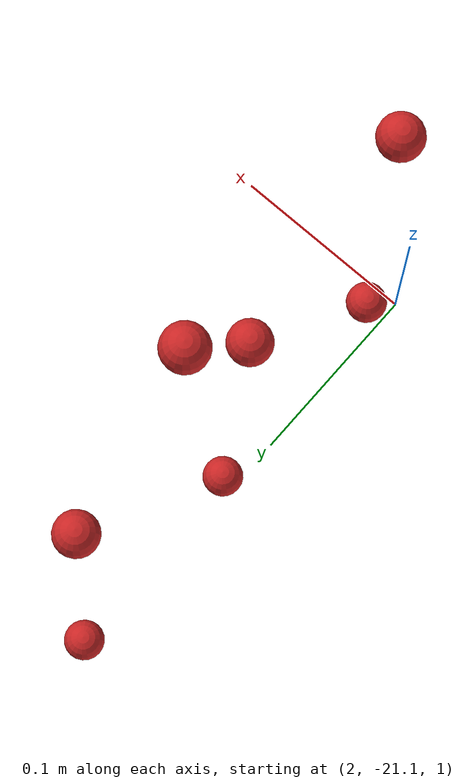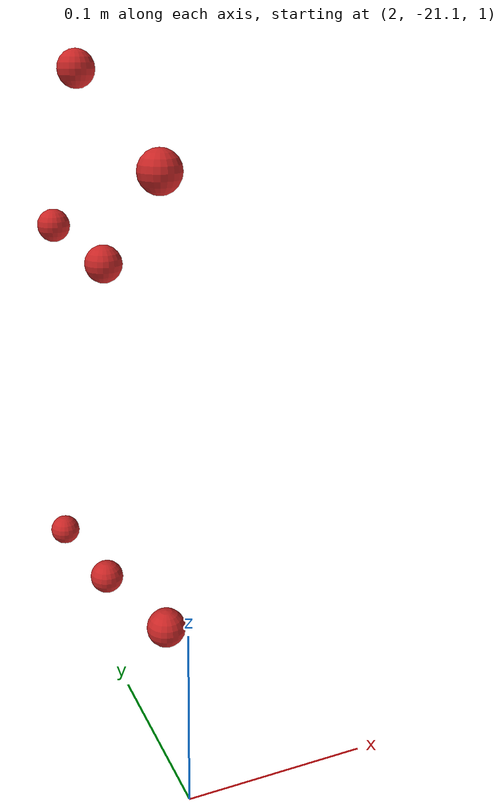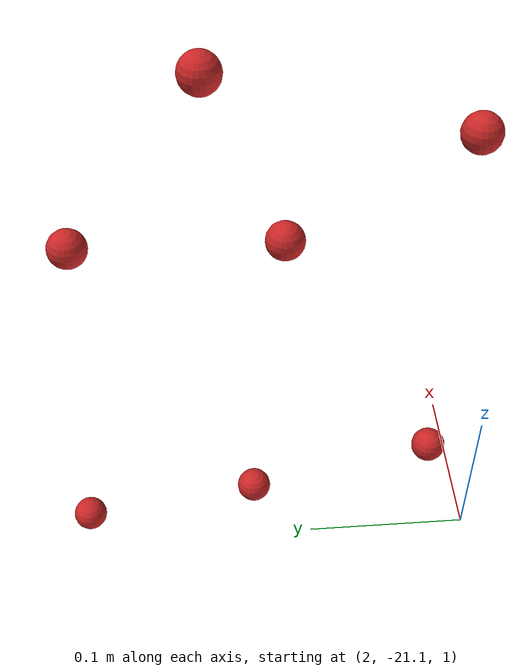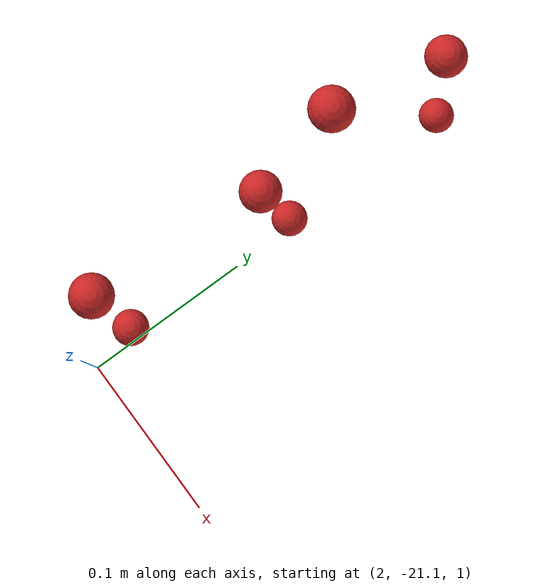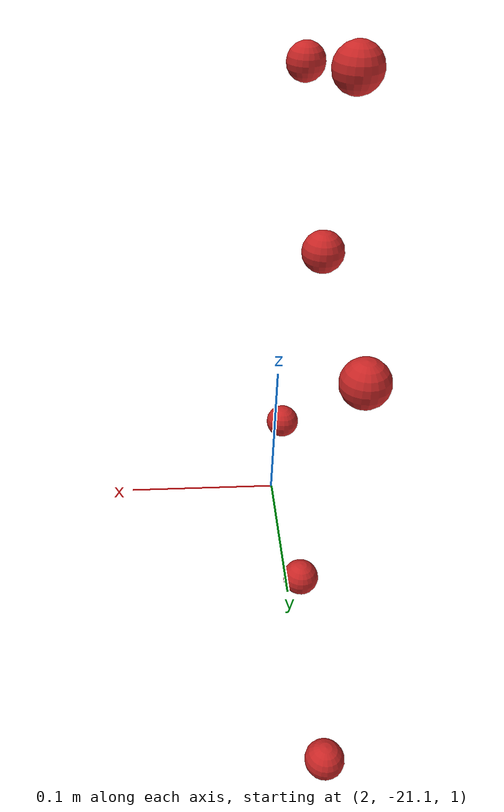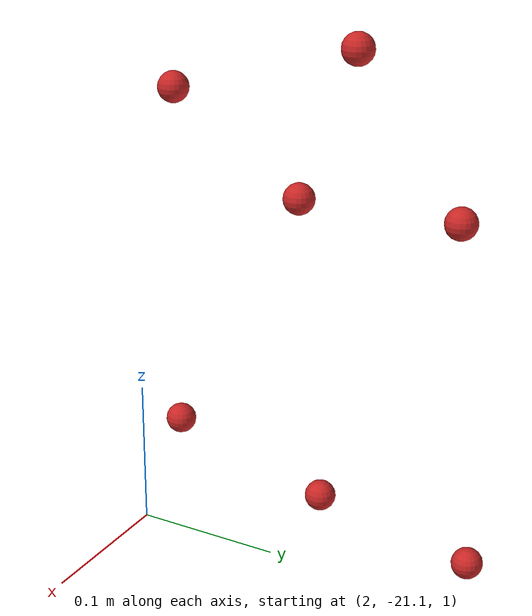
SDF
<sdf version="1.4">
 <world name="default">
  <model name="ground_plane">
   <static>1</static>
   <link name="link">
    <collision name="collision">
     <geometry><plane><normal>0 0 1</normal><size>100 100</size></plane></geometry>
     <surface><friction><ode><mu>100</mu><mu2>50</mu2></ode></friction></surface>
    </collision>
    <visual name="visual">
     <cast_shadows>0</cast_shadows>
     <geometry><plane><normal>0 0 1</normal><size>100 100</size></plane></geometry>
     <material>
      <script><uri>file://media/materials/scripts/gazebo.material</uri><name>Gazebo/Grey</name></script>
     </material>
    </visual>
    <velocity_decay><linear>0</linear><angular>0</angular></velocity_decay>
   </link>
  </model>
  <model name="apple757">
   <link name="my_apple">
    <inertial>
     <pose>2 0 0 0 -0 0</pose>
     <mass>1</mass>
     <inertia><ixx>1</ixx><ixy>0</ixy><ixz>0</ixz><iyy>1</iyy><iyz>0</iyz><izz>1</izz></inertia>
    </inertial>
    <collision name="my_apple_collision">
     <pose>2 0 1 0 -0 0</pose>
     <geometry><sphere><radius>0.01</radius></sphere></geometry>
    </collision>
    <visual name="my_apple_visual">
     <pose>2 0 1 0 -0 0</pose>
     <geometry><sphere><radius>0.01</radius></sphere></geometry>
     <material><script><name>Gazebo/Red</name><uri>__default__</uri></script></material>
    </visual>
    <gravity>0</gravity>
    <velocity_decay><linear>0</linear><angular>0</angular></velocity_decay>
   </link>
   <pose>0 -21.0688 0.312087 0 -0 0</pose>
   <static>0</static>
  </model>
  <model name="apple758">
   <link name="my_apple">
    <inertial>
     <pose>2 0 0 0 -0 0</pose>
     <mass>1</mass>
     <inertia><ixx>1</ixx><ixy>0</ixy><ixz>0</ixz><iyy>1</iyy><iyz>0</iyz><izz>1</izz></inertia>
    </inertial>
    <collision name="my_apple_collision">
     <pose>2 0 1 0 -0 0</pose>
     <geometry><sphere><radius>0.01</radius></sphere></geometry>
    </collision>
    <visual name="my_apple_visual">
     <pose>2 0 1 0 -0 0</pose>
     <geometry><sphere><radius>0.01</radius></sphere></geometry>
     <material><script><name>Gazebo/Red</name><uri>__default__</uri></script></material>
    </visual>
    <gravity>0</gravity>
    <velocity_decay><linear>0</linear><angular>0</angular></velocity_decay>
   </link>
   <pose>0 -21.0688 0.085197 0 -0 0</pose>
   <static>0</static>
  </model>
  <model name="apple759">
   <link name="my_apple">
    <inertial>
     <pose>2 0 0 0 -0 0</pose>
     <mass>1</mass>
     <inertia><ixx>1</ixx><ixy>0</ixy><ixz>0</ixz><iyy>1</iyy><iyz>0</iyz><izz>1</izz></inertia>
    </inertial>
    <collision name="my_apple_collision">
     <pose>2 0 1 0 -0 0</pose>
     <geometry><sphere><radius>0.01</radius></sphere></geometry>
    </collision>
    <visual name="my_apple_visual">
     <pose>2 0 1 0 -0 0</pose>
     <geometry><sphere><radius>0.01</radius></sphere></geometry>
     <material><script><name>Gazebo/Red</name><uri>__default__</uri></script></material>
    </visual>
    <gravity>0</gravity>
    <velocity_decay><linear>0</linear><angular>0</angular></velocity_decay>
   </link>
   <pose>0 -20.9807 0.254066 0 -0 0</pose>
   <static>0</static>
  </model>
  <model name="apple760">
   <link name="my_apple">
    <inertial>
     <pose>2 0 0 0 -0 0</pose>
     <mass>1</mass>
     <inertia><ixx>1</ixx><ixy>0</ixy><ixz>0</ixz><iyy>1</iyy><iyz>0</iyz><izz>1</izz></inertia>
    </inertial>
    <collision name="my_apple_collision">
     <pose>2 0 1 0 -0 0</pose>
     <geometry><sphere><radius>0.01</radius></sphere></geometry>
    </collision>
    <visual name="my_apple_visual">
     <pose>2 0 1 0 -0 0</pose>
     <geometry><sphere><radius>0.01</radius></sphere></geometry>
     <material><script><name>Gazebo/Red</name><uri>__default__</uri></script></material>
    </visual>
    <gravity>0</gravity>
    <velocity_decay><linear>0</linear><angular>0</angular></velocity_decay>
   </link>
   <pose>0 -20.9629 0.055084 0 -0 0</pose>
   <static>0</static>
  </model>
  <model name="apple769">
   <link name="my_apple">
    <inertial>
     <pose>2 0 0 0 -0 0</pose>
     <mass>1</mass>
     <inertia><ixx>1</ixx><ixy>0</ixy><ixz>0</ixz><iyy>1</iyy><iyz>0</iyz><izz>1</izz></inertia>
    </inertial>
    <collision name="my_apple_collision">
     <pose>2 0 1 0 -0 0</pose>
     <geometry><sphere><radius>0.01</radius></sphere></geometry>
    </collision>
    <visual name="my_apple_visual">
     <pose>2 0 1 0 -0 0</pose>
     <geometry><sphere><radius>0.01</radius></sphere></geometry>
     <material><script><name>Gazebo/Red</name><uri>__default__</uri></script></material>
    </visual>
    <gravity>0</gravity>
    <velocity_decay><linear>0</linear><angular>0</angular></velocity_decay>
   </link>
   <pose>0 -20.9438 0.348769 0 -0 0</pose>
   <static>0</static>
  </model>
  <model name="apple774">
   <link name="my_apple">
    <inertial>
     <pose>2 0 0 0 -0 0</pose>
     <mass>1</mass>
     <inertia><ixx>1</ixx><ixy>0</ixy><ixz>0</ixz><iyy>1</iyy><iyz>0</iyz><izz>1</izz></inertia>
    </inertial>
    <collision name="my_apple_collision">
     <pose>2 0 1 0 -0 0</pose>
     <geometry><sphere><radius>0.01</radius></sphere></geometry>
    </collision>
    <visual name="my_apple_visual">
     <pose>2 0 1 0 -0 0</pose>
     <geometry><sphere><radius>0.01</radius></sphere></geometry>
     <material><script><name>Gazebo/Red</name><uri>__default__</uri></script></material>
    </visual>
    <gravity>0</gravity>
    <velocity_decay><linear>0</linear><angular>0</angular></velocity_decay>
   </link>
   <pose>0 -20.8597 0.035403 0 -0 0</pose>
   <static>0</static>
  </model>
  <model name="apple797">
   <link name="my_apple">
    <inertial>
     <pose>2 0 0 0 -0 0</pose>
     <mass>1</mass>
     <inertia><ixx>1</ixx><ixy>0</ixy><ixz>0</ixz><iyy>1</iyy><iyz>0</iyz><izz>1</izz></inertia>
    </inertial>
    <collision name="my_apple_collision">
     <pose>2 0 1 0 -0 0</pose>
     <geometry><sphere><radius>0.01</radius></sphere></geometry>
    </collision>
    <visual name="my_apple_visual">
     <pose>2 0 1 0 -0 0</pose>
     <geometry><sphere><radius>0.01</radius></sphere></geometry>
     <material><script><name>Gazebo/Red</name><uri>__default__</uri></script></material>
    </visual>
    <gravity>0</gravity>
    <velocity_decay><linear>0</linear><angular>0</angular></velocity_decay>
   </link>
   <pose>0 -20.876 0.255934 0 -0 0</pose>
   <static>0</static>
  </model>
 </world>
</sdf>
